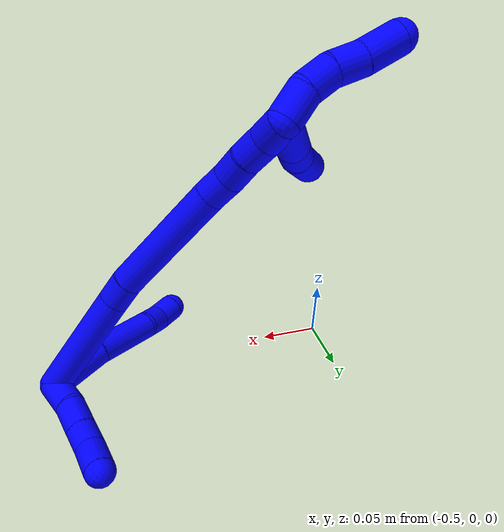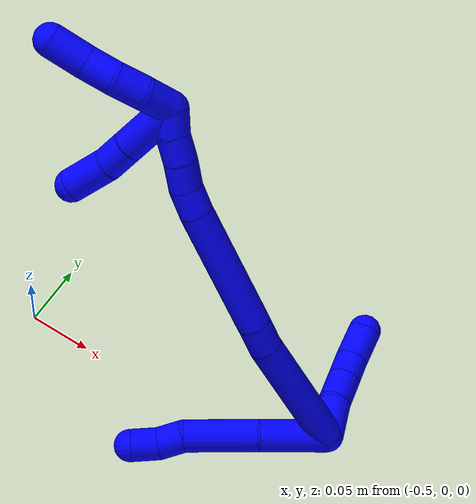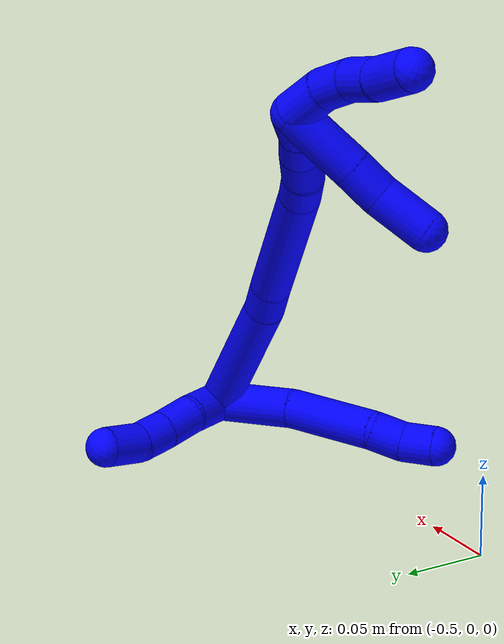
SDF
<sdf version="1.7">
 <world name="default">
  <model name="1">
   <static>0</static>
   <link name="1">
    <collision name="collision-cylinder-e_1_2_8">
     <pose>-0.000408 -0.021366 -0.014315 2.16109 -0.015846 -0.029688</pose>
     <geometry><cylinder><radius>0.0125</radius><length>0.051443</length></cylinder></geometry>
     <surface>
      <friction><ode><mu>1.16</mu><mu2>1.16</mu2><slip1>0</slip1><slip2>0</slip2></ode></friction>
      <contact><ode><kp>1e+06</kp><kd>1</kd><max_vel>0</max_vel><min_depth>0.001</min_depth></ode></contact>
     </surface>
    </collision>
    <visual name="visual-cylinder-e_1_2_8">
     <pose>-0.000408 -0.021366 -0.014315 2.16109 -0.015846 -0.029688</pose>
     <geometry><cylinder><radius>0.0125</radius><length>0.051443</length></cylinder></geometry>
     <material><ambient>0 0 1 1</ambient></material>
    </visual>
    <collision name="collision-cylinder-e_2_8_9">
     <pose>0.001444 -0.067713 -0.041637 2.05086 0.08005 0.131813</pose>
     <geometry><cylinder><radius>0.0125</radius><length>0.05651</length></cylinder></geometry>
     <surface>
      <friction><ode><mu>1.16</mu><mu2>1.16</mu2><slip1>0</slip1><slip2>0</slip2></ode></friction>
      <contact><ode><kp>1e+06</kp><kd>1</kd><max_vel>0</max_vel><min_depth>0.001</min_depth></ode></contact>
     </surface>
    </collision>
    <visual name="visual-cylinder-e_2_8_9">
     <pose>0.001444 -0.067713 -0.041637 2.05086 0.08005 0.131813</pose>
     <geometry><cylinder><radius>0.0125</radius><length>0.05651</length></cylinder></geometry>
     <material><ambient>0 0 1 1</ambient></material>
    </visual>
    <collision name="collision-cylinder-e_3_9_10">
     <pose>0.003052 -0.102641 -0.056897 1.79348 -0.063858 -0.079919</pose>
     <geometry><cylinder><radius>0.0125</radius><length>0.020439</length></cylinder></geometry>
     <surface>
      <friction><ode><mu>1.16</mu><mu2>1.16</mu2><slip1>0</slip1><slip2>0</slip2></ode></friction>
      <contact><ode><kp>1e+06</kp><kd>1</kd><max_vel>0</max_vel><min_depth>0.001</min_depth></ode></contact>
     </surface>
    </collision>
    <visual name="visual-cylinder-e_3_9_10">
     <pose>0.003052 -0.102641 -0.056897 1.79348 -0.063858 -0.079919</pose>
     <geometry><cylinder><radius>0.0125</radius><length>0.020439</length></cylinder></geometry>
     <material><ambient>0 0 1 1</ambient></material>
    </visual>
    <collision name="collision-cylinder-e_4_10_6">
     <pose>0.001834 -0.121907 -0.064587 2.099 -0.052356 -0.091125</pose>
     <geometry><cylinder><radius>0.0125</radius><length>0.021608</length></cylinder></geometry>
     <surface>
      <friction><ode><mu>1.16</mu><mu2>1.16</mu2><slip1>0</slip1><slip2>0</slip2></ode></friction>
      <contact><ode><kp>1e+06</kp><kd>1</kd><max_vel>0</max_vel><min_depth>0.001</min_depth></ode></contact>
     </surface>
    </collision>
    <visual name="visual-cylinder-e_4_10_6">
     <pose>0.001834 -0.121907 -0.064587 2.099 -0.052356 -0.091125</pose>
     <geometry><cylinder><radius>0.0125</radius><length>0.021608</length></cylinder></geometry>
     <material><ambient>0 0 1 1</ambient></material>
    </visual>
    <collision name="collision-cylinder-e_1_2_11">
     <pose>0.013678 0.005121 -0.001708 -1.89277 1.19489 -1.51342</pose>
     <geometry><cylinder><radius>0.0125</radius><length>0.02941</length></cylinder></geometry>
     <surface>
      <friction><ode><mu>1.16</mu><mu2>1.16</mu2><slip1>0</slip1><slip2>0</slip2></ode></friction>
      <contact><ode><kp>1e+06</kp><kd>1</kd><max_vel>0</max_vel><min_depth>0.001</min_depth></ode></contact>
     </surface>
    </collision>
    <visual name="visual-cylinder-e_1_2_11">
     <pose>0.013678 0.005121 -0.001708 -1.89277 1.19489 -1.51342</pose>
     <geometry><cylinder><radius>0.0125</radius><length>0.02941</length></cylinder></geometry>
     <material><ambient>0 0 1 1</ambient></material>
    </visual>
    <collision name="collision-cylinder-e_2_11_12">
     <pose>0.038598 0.014482 -0.002288 -1.31073 1.19874 -0.967184</pose>
     <geometry><cylinder><radius>0.0125</radius><length>0.024135</length></cylinder></geometry>
     <surface>
      <friction><ode><mu>1.16</mu><mu2>1.16</mu2><slip1>0</slip1><slip2>0</slip2></ode></friction>
      <contact><ode><kp>1e+06</kp><kd>1</kd><max_vel>0</max_vel><min_depth>0.001</min_depth></ode></contact>
     </surface>
    </collision>
    <visual name="visual-cylinder-e_2_11_12">
     <pose>0.038598 0.014482 -0.002288 -1.31073 1.19874 -0.967184</pose>
     <geometry><cylinder><radius>0.0125</radius><length>0.024135</length></cylinder></geometry>
     <material><ambient>0 0 1 1</ambient></material>
    </visual>
    <collision name="collision-cylinder-e_3_12_13">
     <pose>0.059199 0.022635 -0.000687 -1.45048 1.17213 -1.06375</pose>
     <geometry><cylinder><radius>0.0125</radius><length>0.020309</length></cylinder></geometry>
     <surface>
      <friction><ode><mu>1.16</mu><mu2>1.16</mu2><slip1>0</slip1><slip2>0</slip2></ode></friction>
      <contact><ode><kp>1e+06</kp><kd>1</kd><max_vel>0</max_vel><min_depth>0.001</min_depth></ode></contact>
     </surface>
    </collision>
    <visual name="visual-cylinder-e_3_12_13">
     <pose>0.059199 0.022635 -0.000687 -1.45048 1.17213 -1.06375</pose>
     <geometry><cylinder><radius>0.0125</radius><length>0.020309</length></cylinder></geometry>
     <material><ambient>0 0 1 1</ambient></material>
    </visual>
    <collision name="collision-cylinder-e_4_13_5">
     <pose>0.079129 0.034081 -0.001761 -1.77339 0.941922 -1.11633</pose>
     <geometry><cylinder><radius>0.0125</radius><length>0.026146</length></cylinder></geometry>
     <surface>
      <friction><ode><mu>1.16</mu><mu2>1.16</mu2><slip1>0</slip1><slip2>0</slip2></ode></friction>
      <contact><ode><kp>1e+06</kp><kd>1</kd><max_vel>0</max_vel><min_depth>0.001</min_depth></ode></contact>
     </surface>
    </collision>
    <visual name="visual-cylinder-e_4_13_5">
     <pose>0.079129 0.034081 -0.001761 -1.77339 0.941922 -1.11633</pose>
     <geometry><cylinder><radius>0.0125</radius><length>0.026146</length></cylinder></geometry>
     <material><ambient>0 0 1 1</ambient></material>
    </visual>
    <collision name="collision-cylinder-e_1_2_14">
     <pose>0.003773 0.001955 -0.048828 -3.10157 0.077057 -2.18373</pose>
     <geometry><cylinder><radius>0.0125</radius><length>0.098025</length></cylinder></geometry>
     <surface>
      <friction><ode><mu>1.16</mu><mu2>1.16</mu2><slip1>0</slip1><slip2>0</slip2></ode></friction>
      <contact><ode><kp>1e+06</kp><kd>1</kd><max_vel>0</max_vel><min_depth>0.001</min_depth></ode></contact>
     </surface>
    </collision>
    <visual name="visual-cylinder-e_1_2_14">
     <pose>0.003773 0.001955 -0.048828 -3.10157 0.077057 -2.18373</pose>
     <geometry><cylinder><radius>0.0125</radius><length>0.098025</length></cylinder></geometry>
     <material><ambient>0 0 1 1</ambient></material>
    </visual>
    <collision name="collision-cylinder-e_2_14_15">
     <pose>0.008989 0.00551 -0.108491 -2.99503 0.130995 -1.45839</pose>
     <geometry><cylinder><radius>0.0125</radius><length>0.022096</length></cylinder></geometry>
     <surface>
      <friction><ode><mu>1.16</mu><mu2>1.16</mu2><slip1>0</slip1><slip2>0</slip2></ode></friction>
      <contact><ode><kp>1e+06</kp><kd>1</kd><max_vel>0</max_vel><min_depth>0.001</min_depth></ode></contact>
     </surface>
    </collision>
    <visual name="visual-cylinder-e_2_14_15">
     <pose>0.008989 0.00551 -0.108491 -2.99503 0.130995 -1.45839</pose>
     <geometry><cylinder><radius>0.0125</radius><length>0.022096</length></cylinder></geometry>
     <material><ambient>0 0 1 1</ambient></material>
    </visual>
    <collision name="collision-cylinder-e_3_15_16">
     <pose>0.022351 0.011961 -0.16712 -3.04043 0.243203 -2.35614</pose>
     <geometry><cylinder><radius>0.0125</radius><length>0.098989</length></cylinder></geometry>
     <surface>
      <friction><ode><mu>1.16</mu><mu2>1.16</mu2><slip1>0</slip1><slip2>0</slip2></ode></friction>
      <contact><ode><kp>1e+06</kp><kd>1</kd><max_vel>0</max_vel><min_depth>0.001</min_depth></ode></contact>
     </surface>
    </collision>
    <visual name="visual-cylinder-e_3_15_16">
     <pose>0.022351 0.011961 -0.16712 -3.04043 0.243203 -2.35614</pose>
     <geometry><cylinder><radius>0.0125</radius><length>0.098989</length></cylinder></geometry>
     <material><ambient>0 0 1 1</ambient></material>
    </visual>
    <collision name="collision-cylinder-e_4_16_17">
     <pose>0.037473 0.018322 -0.224373 -2.98342 0.322648 -2.23522</pose>
     <geometry><cylinder><radius>0.0125</radius><length>0.020204</length></cylinder></geometry>
     <surface>
      <friction><ode><mu>1.16</mu><mu2>1.16</mu2><slip1>0</slip1><slip2>0</slip2></ode></friction>
      <contact><ode><kp>1e+06</kp><kd>1</kd><max_vel>0</max_vel><min_depth>0.001</min_depth></ode></contact>
     </surface>
    </collision>
    <visual name="visual-cylinder-e_4_16_17">
     <pose>0.037473 0.018322 -0.224373 -2.98342 0.322648 -2.23522</pose>
     <geometry><cylinder><radius>0.0125</radius><length>0.020204</length></cylinder></geometry>
     <material><ambient>0 0 1 1</ambient></material>
    </visual>
    <collision name="collision-cylinder-e_5_17_18">
     <pose>0.043619 0.023396 -0.243085 -2.77369 0.288506 -1.32578</pose>
     <geometry><cylinder><radius>0.0125</radius><length>0.020683</length></cylinder></geometry>
     <surface>
      <friction><ode><mu>1.16</mu><mu2>1.16</mu2><slip1>0</slip1><slip2>0</slip2></ode></friction>
      <contact><ode><kp>1e+06</kp><kd>1</kd><max_vel>0</max_vel><min_depth>0.001</min_depth></ode></contact>
     </surface>
    </collision>
    <visual name="visual-cylinder-e_5_17_18">
     <pose>0.043619 0.023396 -0.243085 -2.77369 0.288506 -1.32578</pose>
     <geometry><cylinder><radius>0.0125</radius><length>0.020683</length></cylinder></geometry>
     <material><ambient>0 0 1 1</ambient></material>
    </visual>
    <collision name="collision-cylinder-e_6_18_19">
     <pose>0.049965 0.029466 -0.261401 -2.87209 0.347291 -1.82561</pose>
     <geometry><cylinder><radius>0.0125</radius><length>0.020002</length></cylinder></geometry>
     <surface>
      <friction><ode><mu>1.16</mu><mu2>1.16</mu2><slip1>0</slip1><slip2>0</slip2></ode></friction>
      <contact><ode><kp>1e+06</kp><kd>1</kd><max_vel>0</max_vel><min_depth>0.001</min_depth></ode></contact>
     </surface>
    </collision>
    <visual name="visual-cylinder-e_6_18_19">
     <pose>0.049965 0.029466 -0.261401 -2.87209 0.347291 -1.82561</pose>
     <geometry><cylinder><radius>0.0125</radius><length>0.020002</length></cylinder></geometry>
     <material><ambient>0 0 1 1</ambient></material>
    </visual>
    <collision name="collision-cylinder-e_7_19_1">
     <pose>0.057018 0.036491 -0.278605 -2.63465 0.373474 -1.26033</pose>
     <geometry><cylinder><radius>0.0125</radius><length>0.02</length></cylinder></geometry>
     <surface>
      <friction><ode><mu>1.16</mu><mu2>1.16</mu2><slip1>0</slip1><slip2>0</slip2></ode></friction>
      <contact><ode><kp>1e+06</kp><kd>1</kd><max_vel>0</max_vel><min_depth>0.001</min_depth></ode></contact>
     </surface>
    </collision>
    <visual name="visual-cylinder-e_7_19_1">
     <pose>0.057018 0.036491 -0.278605 -2.63465 0.373474 -1.26033</pose>
     <geometry><cylinder><radius>0.0125</radius><length>0.02</length></cylinder></geometry>
     <material><ambient>0 0 1 1</ambient></material>
    </visual>
    <collision name="collision-cylinder-e_1_1_20">
     <pose>0.059117 0.036757 -0.298617 2.79755 -0.122231 -0.677279</pose>
     <geometry><cylinder><radius>0.0125</radius><length>0.025411</length></cylinder></geometry>
     <surface>
      <friction><ode><mu>1.16</mu><mu2>1.16</mu2><slip1>0</slip1><slip2>0</slip2></ode></friction>
      <contact><ode><kp>1e+06</kp><kd>1</kd><max_vel>0</max_vel><min_depth>0.001</min_depth></ode></contact>
     </surface>
    </collision>
    <visual name="visual-cylinder-e_1_1_20">
     <pose>0.059117 0.036757 -0.298617 2.79755 -0.122231 -0.677279</pose>
     <geometry><cylinder><radius>0.0125</radius><length>0.025411</length></cylinder></geometry>
     <material><ambient>0 0 1 1</ambient></material>
    </visual>
    <collision name="collision-cylinder-e_2_20_21">
     <pose>0.059169 0.026825 -0.319936 2.60035 0.144275 0.509629</pose>
     <geometry><cylinder><radius>0.0125</radius><length>0.022277</length></cylinder></geometry>
     <surface>
      <friction><ode><mu>1.16</mu><mu2>1.16</mu2><slip1>0</slip1><slip2>0</slip2></ode></friction>
      <contact><ode><kp>1e+06</kp><kd>1</kd><max_vel>0</max_vel><min_depth>0.001</min_depth></ode></contact>
     </surface>
    </collision>
    <visual name="visual-cylinder-e_2_20_21">
     <pose>0.059169 0.026825 -0.319936 2.60035 0.144275 0.509629</pose>
     <geometry><cylinder><radius>0.0125</radius><length>0.022277</length></cylinder></geometry>
     <material><ambient>0 0 1 1</ambient></material>
    </visual>
    <collision name="collision-cylinder-e_3_21_22">
     <pose>0.065178 0.014717 -0.337874 2.4935 0.392361 1.06856</pose>
     <geometry><cylinder><radius>0.0125</radius><length>0.023049</length></cylinder></geometry>
     <surface>
      <friction><ode><mu>1.16</mu><mu2>1.16</mu2><slip1>0</slip1><slip2>0</slip2></ode></friction>
      <contact><ode><kp>1e+06</kp><kd>1</kd><max_vel>0</max_vel><min_depth>0.001</min_depth></ode></contact>
     </surface>
    </collision>
    <visual name="visual-cylinder-e_3_21_22">
     <pose>0.065178 0.014717 -0.337874 2.4935 0.392361 1.06856</pose>
     <geometry><cylinder><radius>0.0125</radius><length>0.023049</length></cylinder></geometry>
     <material><ambient>0 0 1 1</ambient></material>
    </visual>
    <collision name="collision-cylinder-e_4_22_4">
     <pose>0.07382 0.001261 -0.358476 2.61586 0.293735 1.0053</pose>
     <geometry><cylinder><radius>0.0125</radius><length>0.029262</length></cylinder></geometry>
     <surface>
      <friction><ode><mu>1.16</mu><mu2>1.16</mu2><slip1>0</slip1><slip2>0</slip2></ode></friction>
      <contact><ode><kp>1e+06</kp><kd>1</kd><max_vel>0</max_vel><min_depth>0.001</min_depth></ode></contact>
     </surface>
    </collision>
    <visual name="visual-cylinder-e_4_22_4">
     <pose>0.07382 0.001261 -0.358476 2.61586 0.293735 1.0053</pose>
     <geometry><cylinder><radius>0.0125</radius><length>0.029262</length></cylinder></geometry>
     <material><ambient>0 0 1 1</ambient></material>
    </visual>
    <collision name="collision-cylinder-e_1_1_23">
     <pose>0.060071 0.019243 -0.280951 1.31065 -0.026414 -0.020303</pose>
     <geometry><cylinder><radius>0.0125</radius><length>0.045068</length></cylinder></geometry>
     <surface>
      <friction><ode><mu>1.16</mu><mu2>1.16</mu2><slip1>0</slip1><slip2>0</slip2></ode></friction>
      <contact><ode><kp>1e+06</kp><kd>1</kd><max_vel>0</max_vel><min_depth>0.001</min_depth></ode></contact>
     </surface>
    </collision>
    <visual name="visual-cylinder-e_1_1_23">
     <pose>0.060071 0.019243 -0.280951 1.31065 -0.026414 -0.020303</pose>
     <geometry><cylinder><radius>0.0125</radius><length>0.045068</length></cylinder></geometry>
     <material><ambient>0 0 1 1</ambient></material>
    </visual>
    <collision name="collision-cylinder-e_2_23_24">
     <pose>0.059483 -0.013056 -0.27216 1.29357 0.000689 0.00052</pose>
     <geometry><cylinder><radius>0.0125</radius><length>0.021897</length></cylinder></geometry>
     <surface>
      <friction><ode><mu>1.16</mu><mu2>1.16</mu2><slip1>0</slip1><slip2>0</slip2></ode></friction>
      <contact><ode><kp>1e+06</kp><kd>1</kd><max_vel>0</max_vel><min_depth>0.001</min_depth></ode></contact>
     </surface>
    </collision>
    <visual name="visual-cylinder-e_2_23_24">
     <pose>0.059483 -0.013056 -0.27216 1.29357 0.000689 0.00052</pose>
     <geometry><cylinder><radius>0.0125</radius><length>0.021897</length></cylinder></geometry>
     <material><ambient>0 0 1 1</ambient></material>
    </visual>
    <collision name="collision-cylinder-e_3_24_3">
     <pose>0.059982 -0.04002 -0.267573 1.47431 0.029754 0.027013</pose>
     <geometry><cylinder><radius>0.0125</radius><length>0.033035</length></cylinder></geometry>
     <surface>
      <friction><ode><mu>1.16</mu><mu2>1.16</mu2><slip1>0</slip1><slip2>0</slip2></ode></friction>
      <contact><ode><kp>1e+06</kp><kd>1</kd><max_vel>0</max_vel><min_depth>0.001</min_depth></ode></contact>
     </surface>
    </collision>
    <visual name="visual-cylinder-e_3_24_3">
     <pose>0.059982 -0.04002 -0.267573 1.47431 0.029754 0.027013</pose>
     <geometry><cylinder><radius>0.0125</radius><length>0.033035</length></cylinder></geometry>
     <material><ambient>0 0 1 1</ambient></material>
    </visual>
    <collision name="collision-sphere-3">
     <pose>0.060474 -0.056453 -0.265982 0 -0 0</pose>
     <geometry><sphere><radius>0.0125</radius></sphere></geometry>
     <surface>
      <friction><ode><mu>1.16</mu><mu2>1.16</mu2><slip1>0</slip1><slip2>0</slip2></ode></friction>
      <contact><ode><kp>1e+06</kp><kd>1</kd><max_vel>0</max_vel><min_depth>0.001</min_depth></ode></contact>
     </surface>
    </collision>
    <visual name="visual-sphere-3">
     <pose>0.060474 -0.056453 -0.265982 0 -0 0</pose>
     <geometry><sphere><radius>0.0125</radius></sphere></geometry>
     <material><ambient>0 0 1 1</ambient></material>
    </visual>
    <collision name="collision-sphere-24">
     <pose>0.059491 -0.023586 -0.269163 0 -0 0</pose>
     <geometry><sphere><radius>0.0125</radius></sphere></geometry>
     <surface>
      <friction><ode><mu>1.16</mu><mu2>1.16</mu2><slip1>0</slip1><slip2>0</slip2></ode></friction>
      <contact><ode><kp>1e+06</kp><kd>1</kd><max_vel>0</max_vel><min_depth>0.001</min_depth></ode></contact>
     </surface>
    </collision>
    <visual name="visual-sphere-24">
     <pose>0.059491 -0.023586 -0.269163 0 -0 0</pose>
     <geometry><sphere><radius>0.0125</radius></sphere></geometry>
     <material><ambient>0 0 1 1</ambient></material>
    </visual>
    <collision name="collision-sphere-23">
     <pose>0.059476 -0.002525 -0.275156 0 -0 0</pose>
     <geometry><sphere><radius>0.0125</radius></sphere></geometry>
     <surface>
      <friction><ode><mu>1.16</mu><mu2>1.16</mu2><slip1>0</slip1><slip2>0</slip2></ode></friction>
      <contact><ode><kp>1e+06</kp><kd>1</kd><max_vel>0</max_vel><min_depth>0.001</min_depth></ode></contact>
     </surface>
    </collision>
    <visual name="visual-sphere-23">
     <pose>0.059476 -0.002525 -0.275156 0 -0 0</pose>
     <geometry><sphere><radius>0.0125</radius></sphere></geometry>
     <material><ambient>0 0 1 1</ambient></material>
    </visual>
    <collision name="collision-sphere-4">
     <pose>0.078056 -0.005767 -0.370589 0 -0 0</pose>
     <geometry><sphere><radius>0.0125</radius></sphere></geometry>
     <surface>
      <friction><ode><mu>1.16</mu><mu2>1.16</mu2><slip1>0</slip1><slip2>0</slip2></ode></friction>
      <contact><ode><kp>1e+06</kp><kd>1</kd><max_vel>0</max_vel><min_depth>0.001</min_depth></ode></contact>
     </surface>
    </collision>
    <visual name="visual-sphere-4">
     <pose>0.078056 -0.005767 -0.370589 0 -0 0</pose>
     <geometry><sphere><radius>0.0125</radius></sphere></geometry>
     <material><ambient>0 0 1 1</ambient></material>
    </visual>
    <collision name="collision-sphere-22">
     <pose>0.069584 0.008289 -0.346363 0 -0 0</pose>
     <geometry><sphere><radius>0.0125</radius></sphere></geometry>
     <surface>
      <friction><ode><mu>1.16</mu><mu2>1.16</mu2><slip1>0</slip1><slip2>0</slip2></ode></friction>
      <contact><ode><kp>1e+06</kp><kd>1</kd><max_vel>0</max_vel><min_depth>0.001</min_depth></ode></contact>
     </surface>
    </collision>
    <visual name="visual-sphere-22">
     <pose>0.069584 0.008289 -0.346363 0 -0 0</pose>
     <geometry><sphere><radius>0.0125</radius></sphere></geometry>
     <material><ambient>0 0 1 1</ambient></material>
    </visual>
    <collision name="collision-sphere-21">
     <pose>0.060771 0.021146 -0.329384 0 -0 0</pose>
     <geometry><sphere><radius>0.0125</radius></sphere></geometry>
     <surface>
      <friction><ode><mu>1.16</mu><mu2>1.16</mu2><slip1>0</slip1><slip2>0</slip2></ode></friction>
      <contact><ode><kp>1e+06</kp><kd>1</kd><max_vel>0</max_vel><min_depth>0.001</min_depth></ode></contact>
     </surface>
    </collision>
    <visual name="visual-sphere-21">
     <pose>0.060771 0.021146 -0.329384 0 -0 0</pose>
     <geometry><sphere><radius>0.0125</radius></sphere></geometry>
     <material><ambient>0 0 1 1</ambient></material>
    </visual>
    <collision name="collision-sphere-20">
     <pose>0.057568 0.032504 -0.310489 0 -0 0</pose>
     <geometry><sphere><radius>0.0125</radius></sphere></geometry>
     <surface>
      <friction><ode><mu>1.16</mu><mu2>1.16</mu2><slip1>0</slip1><slip2>0</slip2></ode></friction>
      <contact><ode><kp>1e+06</kp><kd>1</kd><max_vel>0</max_vel><min_depth>0.001</min_depth></ode></contact>
     </surface>
    </collision>
    <visual name="visual-sphere-20">
     <pose>0.057568 0.032504 -0.310489 0 -0 0</pose>
     <geometry><sphere><radius>0.0125</radius></sphere></geometry>
     <material><ambient>0 0 1 1</ambient></material>
    </visual>
    <collision name="collision-sphere-11">
     <pose>0.027356 0.010242 -0.003417 0 -0 0</pose>
     <geometry><sphere><radius>0.0125</radius></sphere></geometry>
     <surface>
      <friction><ode><mu>1.16</mu><mu2>1.16</mu2><slip1>0</slip1><slip2>0</slip2></ode></friction>
      <contact><ode><kp>1e+06</kp><kd>1</kd><max_vel>0</max_vel><min_depth>0.001</min_depth></ode></contact>
     </surface>
    </collision>
    <visual name="visual-sphere-11">
     <pose>0.027356 0.010242 -0.003417 0 -0 0</pose>
     <geometry><sphere><radius>0.0125</radius></sphere></geometry>
     <material><ambient>0 0 1 1</ambient></material>
    </visual>
    <collision name="collision-sphere-6">
     <pose>0.001269 -0.131225 -0.070025 0 -0 0</pose>
     <geometry><sphere><radius>0.0125</radius></sphere></geometry>
     <surface>
      <friction><ode><mu>1.16</mu><mu2>1.16</mu2><slip1>0</slip1><slip2>0</slip2></ode></friction>
      <contact><ode><kp>1e+06</kp><kd>1</kd><max_vel>0</max_vel><min_depth>0.001</min_depth></ode></contact>
     </surface>
    </collision>
    <visual name="visual-sphere-6">
     <pose>0.001269 -0.131225 -0.070025 0 -0 0</pose>
     <geometry><sphere><radius>0.0125</radius></sphere></geometry>
     <material><ambient>0 0 1 1</ambient></material>
    </visual>
    <collision name="collision-sphere-10">
     <pose>0.002399 -0.112588 -0.059149 0 -0 0</pose>
     <geometry><sphere><radius>0.0125</radius></sphere></geometry>
     <surface>
      <friction><ode><mu>1.16</mu><mu2>1.16</mu2><slip1>0</slip1><slip2>0</slip2></ode></friction>
      <contact><ode><kp>1e+06</kp><kd>1</kd><max_vel>0</max_vel><min_depth>0.001</min_depth></ode></contact>
     </surface>
    </collision>
    <visual name="visual-sphere-10">
     <pose>0.002399 -0.112588 -0.059149 0 -0 0</pose>
     <geometry><sphere><radius>0.0125</radius></sphere></geometry>
     <material><ambient>0 0 1 1</ambient></material>
    </visual>
    <collision name="collision-sphere-9">
     <pose>0.003704 -0.092694 -0.054645 0 -0 0</pose>
     <geometry><sphere><radius>0.0125</radius></sphere></geometry>
     <surface>
      <friction><ode><mu>1.16</mu><mu2>1.16</mu2><slip1>0</slip1><slip2>0</slip2></ode></friction>
      <contact><ode><kp>1e+06</kp><kd>1</kd><max_vel>0</max_vel><min_depth>0.001</min_depth></ode></contact>
     </surface>
    </collision>
    <visual name="visual-sphere-9">
     <pose>0.003704 -0.092694 -0.054645 0 -0 0</pose>
     <geometry><sphere><radius>0.0125</radius></sphere></geometry>
     <material><ambient>0 0 1 1</ambient></material>
    </visual>
    <collision name="collision-sphere-2">
     <geometry><sphere><radius>0.0125</radius></sphere></geometry>
     <surface>
      <friction><ode><mu>1.16</mu><mu2>1.16</mu2><slip1>0</slip1><slip2>0</slip2></ode></friction>
      <contact><ode><kp>1e+06</kp><kd>1</kd><max_vel>0</max_vel><min_depth>0.001</min_depth></ode></contact>
     </surface>
    </collision>
    <visual name="visual-sphere-2">
     <geometry><sphere><radius>0.0125</radius></sphere></geometry>
     <material><ambient>0 0 1 1</ambient></material>
    </visual>
    <collision name="collision-sphere-19">
     <pose>0.053369 0.03197 -0.270465 0 -0 0</pose>
     <geometry><sphere><radius>0.0125</radius></sphere></geometry>
     <surface>
      <friction><ode><mu>1.16</mu><mu2>1.16</mu2><slip1>0</slip1><slip2>0</slip2></ode></friction>
      <contact><ode><kp>1e+06</kp><kd>1</kd><max_vel>0</max_vel><min_depth>0.001</min_depth></ode></contact>
     </surface>
    </collision>
    <visual name="visual-sphere-19">
     <pose>0.053369 0.03197 -0.270465 0 -0 0</pose>
     <geometry><sphere><radius>0.0125</radius></sphere></geometry>
     <material><ambient>0 0 1 1</ambient></material>
    </visual>
    <collision name="collision-sphere-8">
     <pose>-0.000815 -0.042732 -0.02863 0 -0 0</pose>
     <geometry><sphere><radius>0.0125</radius></sphere></geometry>
     <surface>
      <friction><ode><mu>1.16</mu><mu2>1.16</mu2><slip1>0</slip1><slip2>0</slip2></ode></friction>
      <contact><ode><kp>1e+06</kp><kd>1</kd><max_vel>0</max_vel><min_depth>0.001</min_depth></ode></contact>
     </surface>
    </collision>
    <visual name="visual-sphere-8">
     <pose>-0.000815 -0.042732 -0.02863 0 -0 0</pose>
     <geometry><sphere><radius>0.0125</radius></sphere></geometry>
     <material><ambient>0 0 1 1</ambient></material>
    </visual>
    <collision name="collision-sphere-12">
     <pose>0.04984 0.018721 -0.00116 0 -0 0</pose>
     <geometry><sphere><radius>0.0125</radius></sphere></geometry>
     <surface>
      <friction><ode><mu>1.16</mu><mu2>1.16</mu2><slip1>0</slip1><slip2>0</slip2></ode></friction>
      <contact><ode><kp>1e+06</kp><kd>1</kd><max_vel>0</max_vel><min_depth>0.001</min_depth></ode></contact>
     </surface>
    </collision>
    <visual name="visual-sphere-12">
     <pose>0.04984 0.018721 -0.00116 0 -0 0</pose>
     <geometry><sphere><radius>0.0125</radius></sphere></geometry>
     <material><ambient>0 0 1 1</ambient></material>
    </visual>
    <collision name="collision-sphere-13">
     <pose>0.068557 0.026548 -0.000214 0 -0 0</pose>
     <geometry><sphere><radius>0.0125</radius></sphere></geometry>
     <surface>
      <friction><ode><mu>1.16</mu><mu2>1.16</mu2><slip1>0</slip1><slip2>0</slip2></ode></friction>
      <contact><ode><kp>1e+06</kp><kd>1</kd><max_vel>0</max_vel><min_depth>0.001</min_depth></ode></contact>
     </surface>
    </collision>
    <visual name="visual-sphere-13">
     <pose>0.068557 0.026548 -0.000214 0 -0 0</pose>
     <geometry><sphere><radius>0.0125</radius></sphere></geometry>
     <material><ambient>0 0 1 1</ambient></material>
    </visual>
    <collision name="collision-sphere-5">
     <pose>0.0897 0.041613 -0.003309 0 -0 0</pose>
     <geometry><sphere><radius>0.0125</radius></sphere></geometry>
     <surface>
      <friction><ode><mu>1.16</mu><mu2>1.16</mu2><slip1>0</slip1><slip2>0</slip2></ode></friction>
      <contact><ode><kp>1e+06</kp><kd>1</kd><max_vel>0</max_vel><min_depth>0.001</min_depth></ode></contact>
     </surface>
    </collision>
    <visual name="visual-sphere-5">
     <pose>0.0897 0.041613 -0.003309 0 -0 0</pose>
     <geometry><sphere><radius>0.0125</radius></sphere></geometry>
     <material><ambient>0 0 1 1</ambient></material>
    </visual>
    <collision name="collision-sphere-14">
     <pose>0.007546 0.003911 -0.097655 0 -0 0</pose>
     <geometry><sphere><radius>0.0125</radius></sphere></geometry>
     <surface>
      <friction><ode><mu>1.16</mu><mu2>1.16</mu2><slip1>0</slip1><slip2>0</slip2></ode></friction>
      <contact><ode><kp>1e+06</kp><kd>1</kd><max_vel>0</max_vel><min_depth>0.001</min_depth></ode></contact>
     </surface>
    </collision>
    <visual name="visual-sphere-14">
     <pose>0.007546 0.003911 -0.097655 0 -0 0</pose>
     <geometry><sphere><radius>0.0125</radius></sphere></geometry>
     <material><ambient>0 0 1 1</ambient></material>
    </visual>
    <collision name="collision-sphere-15">
     <pose>0.010432 0.00711 -0.119327 0 -0 0</pose>
     <geometry><sphere><radius>0.0125</radius></sphere></geometry>
     <surface>
      <friction><ode><mu>1.16</mu><mu2>1.16</mu2><slip1>0</slip1><slip2>0</slip2></ode></friction>
      <contact><ode><kp>1e+06</kp><kd>1</kd><max_vel>0</max_vel><min_depth>0.001</min_depth></ode></contact>
     </surface>
    </collision>
    <visual name="visual-sphere-15">
     <pose>0.010432 0.00711 -0.119327 0 -0 0</pose>
     <geometry><sphere><radius>0.0125</radius></sphere></geometry>
     <material><ambient>0 0 1 1</ambient></material>
    </visual>
    <collision name="collision-sphere-16">
     <pose>0.03427 0.016813 -0.214912 0 -0 0</pose>
     <geometry><sphere><radius>0.0125</radius></sphere></geometry>
     <surface>
      <friction><ode><mu>1.16</mu><mu2>1.16</mu2><slip1>0</slip1><slip2>0</slip2></ode></friction>
      <contact><ode><kp>1e+06</kp><kd>1</kd><max_vel>0</max_vel><min_depth>0.001</min_depth></ode></contact>
     </surface>
    </collision>
    <visual name="visual-sphere-16">
     <pose>0.03427 0.016813 -0.214912 0 -0 0</pose>
     <geometry><sphere><radius>0.0125</radius></sphere></geometry>
     <material><ambient>0 0 1 1</ambient></material>
    </visual>
    <collision name="collision-sphere-17">
     <pose>0.040676 0.019831 -0.233834 0 -0 0</pose>
     <geometry><sphere><radius>0.0125</radius></sphere></geometry>
     <surface>
      <friction><ode><mu>1.16</mu><mu2>1.16</mu2><slip1>0</slip1><slip2>0</slip2></ode></friction>
      <contact><ode><kp>1e+06</kp><kd>1</kd><max_vel>0</max_vel><min_depth>0.001</min_depth></ode></contact>
     </surface>
    </collision>
    <visual name="visual-sphere-17">
     <pose>0.040676 0.019831 -0.233834 0 -0 0</pose>
     <geometry><sphere><radius>0.0125</radius></sphere></geometry>
     <material><ambient>0 0 1 1</ambient></material>
    </visual>
    <collision name="collision-sphere-18">
     <pose>0.046561 0.026962 -0.252336 0 -0 0</pose>
     <geometry><sphere><radius>0.0125</radius></sphere></geometry>
     <surface>
      <friction><ode><mu>1.16</mu><mu2>1.16</mu2><slip1>0</slip1><slip2>0</slip2></ode></friction>
      <contact><ode><kp>1e+06</kp><kd>1</kd><max_vel>0</max_vel><min_depth>0.001</min_depth></ode></contact>
     </surface>
    </collision>
    <visual name="visual-sphere-18">
     <pose>0.046561 0.026962 -0.252336 0 -0 0</pose>
     <geometry><sphere><radius>0.0125</radius></sphere></geometry>
     <material><ambient>0 0 1 1</ambient></material>
    </visual>
    <collision name="collision-sphere-1">
     <pose>0.060666 0.041011 -0.286745 0 -0 0</pose>
     <geometry><sphere><radius>0.0125</radius></sphere></geometry>
     <surface>
      <friction><ode><mu>1.16</mu><mu2>1.16</mu2><slip1>0</slip1><slip2>0</slip2></ode></friction>
      <contact><ode><kp>1e+06</kp><kd>1</kd><max_vel>0</max_vel><min_depth>0.001</min_depth></ode></contact>
     </surface>
    </collision>
    <visual name="visual-sphere-1">
     <pose>0.060666 0.041011 -0.286745 0 -0 0</pose>
     <geometry><sphere><radius>0.0125</radius></sphere></geometry>
     <material><ambient>0 0 1 1</ambient></material>
    </visual>
    <inertial>
     <pose>0.031762 -0.003959 -0.147141 0 -0 0</pose>
     <mass>0.75</mass>
     <inertia>
      <ixx>-0.000167</ixx>
      <ixy>0</ixy>
      <ixz>0</ixz>
      <iyy>-4.6e-05</iyy>
      <iyz>0</iyz>
      <izz>-4.2e-05</izz>
     </inertia>
    </inertial>
   </link>
   <pose>-0.248793 0.030344 0.018891 2.60312 0.304531 2.18212</pose>
  </model>
 </world>
</sdf>
